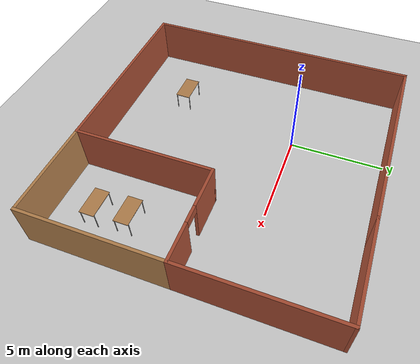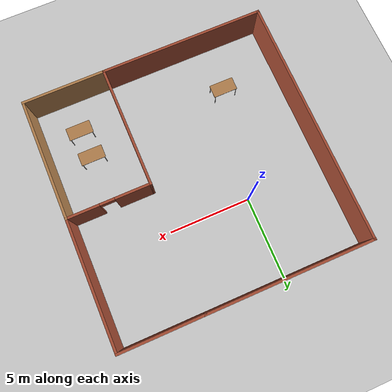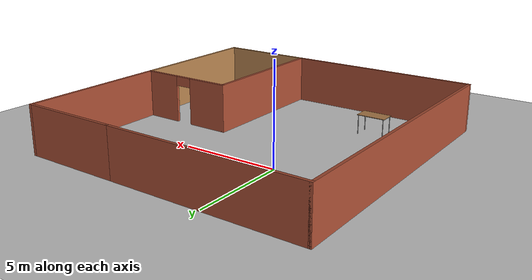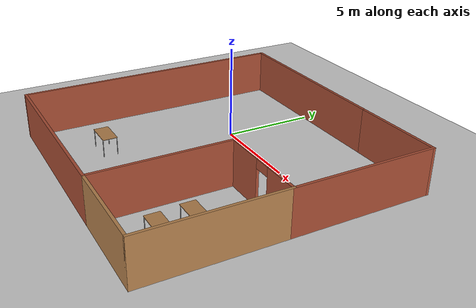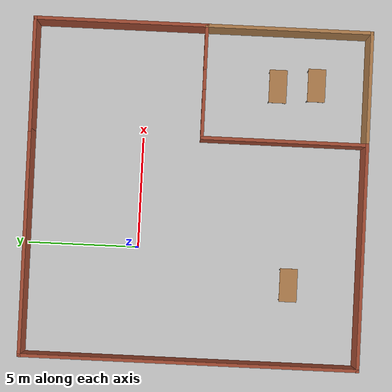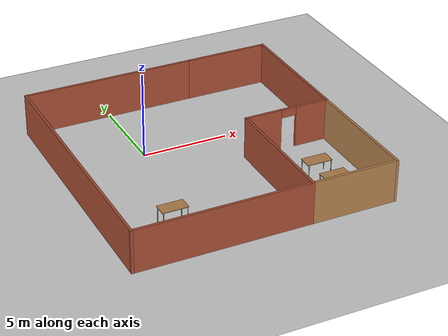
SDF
<sdf version="1.7">
 <world name="default">
  <light name="sun" type="directional">
   <pose>0 0 10 0 -0 0</pose>
   <diffuse>0.8 0.8 0.8 1</diffuse>
   <specular>0.2 0.2 0.2 1</specular>
   <attenuation>
    <range>1000</range>
    <constant>0.9</constant>
    <linear>0.01</linear>
    <quadratic>0.001</quadratic>
   </attenuation>
   <direction>-0.5 0.1 -0.9</direction>
   <spot><inner_angle>0</inner_angle><outer_angle>0</outer_angle><falloff>0</falloff></spot>
  </light>
  <model name="ground_plane">
   <static>1</static>
   <link name="link">
    <collision name="collision">
     <geometry><plane><normal>0 0 1</normal><size>100 100</size></plane></geometry>
     <surface>
      <contact><collide_bitmask>65535</collide_bitmask></contact>
      <friction><ode><mu>100</mu><mu2>50</mu2></ode></friction>
     </surface>
    </collision>
    <visual name="visual">
     <cast_shadows>0</cast_shadows>
     <geometry><plane><normal>0 0 1</normal><size>100 100</size></plane></geometry>
     <material>
      <script><uri>file://media/materials/scripts/gazebo.material</uri><name>Gazebo/Grey</name></script>
     </material>
    </visual>
   </link>
  </model>
  <gravity>0 0 -9.8</gravity>
  <magnetic_field>6e-06 2.3e-05 -4.2e-05</magnetic_field>
  <atmosphere type="adiabatic"/>
  <physics type="ode">
   <max_step_size>0.001</max_step_size>
   <real_time_factor>1</real_time_factor>
   <real_time_update_rate>1000</real_time_update_rate>
  </physics>
  <scene><ambient>0.4 0.4 0.4 1</ambient><background>0.7 0.7 0.7 1</background><shadows>1</shadows></scene>
  <spherical_coordinates>
   <surface_model>EARTH_WGS84</surface_model>
   <latitude_deg>0</latitude_deg>
   <longitude_deg>0</longitude_deg>
   <elevation>0</elevation>
   <heading_deg>0</heading_deg>
  </spherical_coordinates>
  <model name="wall">
   <pose>2.49997 -2.5 0 0 -0 0</pose>
   <link name="Wall_0">
    <collision name="Wall_0_Collision">
     <geometry><box><size>10.15 0.15 2.5</size></box></geometry>
     <pose>0 0 1.25 0 -0 0</pose>
    </collision>
    <visual name="Wall_0_Visual">
     <pose>0 0 1.25 0 -0 0</pose>
     <geometry><box><size>10.15 0.15 2.5</size></box></geometry>
     <material>
      <script><uri>file://media/materials/scripts/gazebo.material</uri><name>Gazebo/Bricks</name></script>
      <ambient>1 1 1 1</ambient>
     </material>
     <meta><layer>0</layer></meta>
    </visual>
    <pose>-2.49997 7.5 0 0 -0 0</pose>
   </link>
   <link name="Wall_10">
    <collision name="Wall_10_Collision">
     <geometry><box><size>5.15 0.15 2.5</size></box></geometry>
     <pose>0 0 1.25 0 -0 0</pose>
    </collision>
    <visual name="Wall_10_Visual">
     <pose>0 0 1.25 0 -0 0</pose>
     <geometry><box><size>5.15 0.15 2.5</size></box></geometry>
     <material>
      <script><uri>file://media/materials/scripts/gazebo.material</uri><name>Gazebo/Wood</name></script>
      <ambient>1 1 1 1</ambient>
     </material>
     <meta><layer>0</layer></meta>
    </visual>
    <pose>5.00003 -7.5 0 0 -0 0</pose>
   </link>
   <link name="Wall_11">
    <collision name="Wall_11_Collision">
     <geometry><box><size>7.5 0.15 2.5</size></box></geometry>
     <pose>0 0 1.25 0 -0 0</pose>
    </collision>
    <visual name="Wall_11_Visual">
     <pose>0 0 1.25 0 -0 0</pose>
     <geometry><box><size>7.5 0.15 2.5</size></box></geometry>
     <material>
      <script><uri>file://media/materials/scripts/gazebo.material</uri><name>Gazebo/Wood</name></script>
      <ambient>1 1 1 1</ambient>
     </material>
     <meta><layer>0</layer></meta>
    </visual>
    <pose>7.50003 -3.825 0 0 -0 1.5708</pose>
   </link>
   <link name="Wall_2">
    <collision name="Wall_2_Collision">
     <geometry><box><size>10.1501 0.15 2.5</size></box></geometry>
     <pose>0 0 1.25 0 -0 0</pose>
    </collision>
    <visual name="Wall_2_Visual">
     <pose>0 0 1.25 0 -0 0</pose>
     <geometry><box><size>10.1501 0.15 2.5</size></box></geometry>
     <material>
      <script><uri>file://media/materials/scripts/gazebo.material</uri><name>Gazebo/Bricks</name></script>
      <ambient>1 1 1 1</ambient>
     </material>
     <meta><layer>0</layer></meta>
    </visual>
    <pose>-2.49997 -7.5 0 0 -0 3.14159</pose>
   </link>
   <link name="Wall_3">
    <collision name="Wall_3_Collision">
     <geometry><box><size>15.15 0.15 2.5</size></box></geometry>
     <pose>0 0 1.25 0 -0 0</pose>
    </collision>
    <visual name="Wall_3_Visual">
     <pose>0 0 1.25 0 -0 0</pose>
     <geometry><box><size>15.15 0.15 2.5</size></box></geometry>
     <material>
      <script><uri>file://media/materials/scripts/gazebo.material</uri><name>Gazebo/Bricks</name></script>
      <ambient>1 1 1 1</ambient>
     </material>
     <meta><layer>0</layer></meta>
    </visual>
    <pose>-7.49997 0 0 0 -0 1.5708</pose>
   </link>
   <link name="Wall_5">
    <collision name="Wall_5_Collision">
     <geometry><box><size>7.5 0.15 2.5</size></box></geometry>
     <pose>0 0 1.25 0 -0 0</pose>
    </collision>
    <visual name="Wall_5_Visual">
     <pose>0 0 1.25 0 -0 0</pose>
     <geometry><box><size>7.5 0.15 2.5</size></box></geometry>
     <material>
      <script><uri>file://media/materials/scripts/gazebo.material</uri><name>Gazebo/Bricks</name></script>
      <ambient>1 1 1 1</ambient>
     </material>
     <meta><layer>0</layer></meta>
    </visual>
    <pose>2.50003 -3.825 0 0 -0 1.5708</pose>
   </link>
   <link name="Wall_6">
    <pose>5.00003 -0.15 0 0 -0 0</pose>
    <visual name="Wall_6_Visual_0">
     <pose>-1.46302 0 1.25 0 -0 0</pose>
     <geometry><box><size>2.22396 0.15 2.5</size></box></geometry>
     <material>
      <script><uri>file://media/materials/scripts/gazebo.material</uri><name>Gazebo/Bricks</name></script>
      <ambient>1 1 1 1</ambient>
     </material>
     <meta><layer>0</layer></meta>
    </visual>
    <collision name="Wall_6_Collision_0">
     <geometry><box><size>2.22396 0.15 2.5</size></box></geometry>
     <pose>-1.46302 0 1.25 0 -0 0</pose>
    </collision>
    <visual name="Wall_6_Visual_1">
     <pose>1.56198 0 1.25 0 -0 0</pose>
     <geometry><box><size>2.02604 0.15 2.5</size></box></geometry>
     <material>
      <script><uri>file://media/materials/scripts/gazebo.material</uri><name>Gazebo/Bricks</name></script>
      <ambient>1 1 1 1</ambient>
     </material>
     <meta><layer>0</layer></meta>
    </visual>
    <collision name="Wall_6_Collision_1">
     <geometry><box><size>2.02604 0.15 2.5</size></box></geometry>
     <pose>1.56198 0 1.25 0 -0 0</pose>
    </collision>
    <visual name="Wall_6_Visual_2">
     <pose>0.098958 0 2.25 0 -0 0</pose>
     <geometry><box><size>0.9 0.15 0.5</size></box></geometry>
     <material>
      <script><uri>file://media/materials/scripts/gazebo.material</uri><name>Gazebo/Bricks</name></script>
      <ambient>1 1 1 1</ambient>
     </material>
     <meta><layer>0</layer></meta>
    </visual>
    <collision name="Wall_6_Collision_2">
     <geometry><box><size>0.9 0.15 0.5</size></box></geometry>
     <pose>0.098958 0 2.25 0 -0 0</pose>
    </collision>
   </link>
   <link name="Wall_7">
    <collision name="Wall_7_Collision">
     <geometry><box><size>7.8 0.15 2.5</size></box></geometry>
     <pose>0 0 1.25 0 -0 0</pose>
    </collision>
    <visual name="Wall_7_Visual">
     <pose>0 0 1.25 0 -0 0</pose>
     <geometry><box><size>7.8 0.15 2.5</size></box></geometry>
     <material>
      <script><uri>file://media/materials/scripts/gazebo.material</uri><name>Gazebo/Bricks</name></script>
      <ambient>1 1 1 1</ambient>
     </material>
     <meta><layer>0</layer></meta>
    </visual>
    <pose>7.50003 3.675 0 0 -0 1.5708</pose>
   </link>
   <link name="Wall_8">
    <collision name="Wall_8_Collision">
     <geometry><box><size>5.15 0.15 2.5</size></box></geometry>
     <pose>0 0 1.25 0 -0 0</pose>
    </collision>
    <visual name="Wall_8_Visual">
     <pose>0 0 1.25 0 -0 0</pose>
     <geometry><box><size>5.15 0.15 2.5</size></box></geometry>
     <material>
      <script><uri>file://media/materials/scripts/gazebo.material</uri><name>Gazebo/Bricks</name></script>
      <ambient>1 1 1 1</ambient>
     </material>
     <meta><layer>0</layer></meta>
    </visual>
    <pose>5.00003 7.5 0 0 -0 3.14159</pose>
   </link>
   <static>1</static>
  </model>
  <model name="Table">
   <static>1</static>
   <link name="link">
    <collision name="surface">
     <pose>0 0 1 0 -0 0</pose>
     <geometry><box><size>1.5 0.8 0.03</size></box></geometry>
     <surface><friction><ode><mu>0.6</mu><mu2>0.6</mu2></ode></friction></surface>
    </collision>
    <visual name="visual1">
     <pose>0 0 1 0 -0 0</pose>
     <geometry><box><size>1.5 0.8 0.03</size></box></geometry>
     <material>
      <diffuse>1 1 1 1</diffuse>
      <script><uri>file://media/materials/scripts/gazebo.material</uri><name>Gazebo/Wood</name></script>
      <pbr>
       <metal>
        <albedo_map>https://fuel.ignitionrobotics.org/1.0/openrobotics/models/table/3/files/Table_Diffuse.jpg</albedo_map>
       </metal>
      </pbr>
     </material>
    </visual>
    <collision name="front_left_leg">
     <pose>0.68 0.38 0.5 0 -0 0</pose>
     <geometry><cylinder><radius>0.02</radius><length>1</length></cylinder></geometry>
    </collision>
    <visual name="front_left_leg">
     <pose>0.68 0.38 0.5 0 -0 0</pose>
     <geometry><cylinder><radius>0.02</radius><length>1</length></cylinder></geometry>
     <material>
      <diffuse>0.5 0.5 0.5 1</diffuse>
      <script><uri>file://media/materials/scripts/gazebo.material</uri><name>Gazebo/Grey</name></script>
     </material>
    </visual>
    <collision name="front_right_leg">
     <pose>0.68 -0.38 0.5 0 -0 0</pose>
     <geometry><cylinder><radius>0.02</radius><length>1</length></cylinder></geometry>
    </collision>
    <visual name="front_right_leg">
     <pose>0.68 -0.38 0.5 0 -0 0</pose>
     <geometry><cylinder><radius>0.02</radius><length>1</length></cylinder></geometry>
     <material>
      <diffuse>0.5 0.5 0.5 1</diffuse>
      <script><uri>file://media/materials/scripts/gazebo.material</uri><name>Gazebo/Grey</name></script>
     </material>
    </visual>
    <collision name="back_right_leg">
     <pose>-0.68 -0.38 0.5 0 -0 0</pose>
     <geometry><cylinder><radius>0.02</radius><length>1</length></cylinder></geometry>
    </collision>
    <visual name="back_right_leg">
     <pose>-0.68 -0.38 0.5 0 -0 0</pose>
     <geometry><cylinder><radius>0.02</radius><length>1</length></cylinder></geometry>
     <material>
      <diffuse>0.5 0.5 0.5 1</diffuse>
      <script><uri>file://media/materials/scripts/gazebo.material</uri><name>Gazebo/Grey</name></script>
     </material>
    </visual>
    <collision name="back_left_leg">
     <pose>-0.68 0.38 0.5 0 -0 0</pose>
     <geometry><cylinder><radius>0.02</radius><length>1</length></cylinder></geometry>
    </collision>
    <visual name="back_left_leg">
     <pose>-0.68 0.38 0.5 0 -0 0</pose>
     <geometry><cylinder><radius>0.02</radius><length>1</length></cylinder></geometry>
     <material>
      <diffuse>0.5 0.5 0.5 1</diffuse>
      <script><uri>file://media/materials/scripts/gazebo.material</uri><name>Gazebo/Grey</name></script>
     </material>
    </visual>
   </link>
   <pose>7.68416 -7.72678 0 0 -0 0</pose>
  </model>
  <model name="Table_clone">
   <static>1</static>
   <link name="link">
    <collision name="surface">
     <pose>0 0 1 0 -0 0</pose>
     <geometry><box><size>1.5 0.8 0.03</size></box></geometry>
     <surface><friction><ode><mu>0.6</mu><mu2>0.6</mu2></ode></friction></surface>
    </collision>
    <visual name="visual1">
     <pose>0 0 1 0 -0 0</pose>
     <geometry><box><size>1.5 0.8 0.03</size></box></geometry>
     <material>
      <diffuse>1 1 1 1</diffuse>
      <script><uri>file://media/materials/scripts/gazebo.material</uri><name>Gazebo/Wood</name></script>
      <pbr>
       <metal>
        <albedo_map>https://fuel.ignitionrobotics.org/1.0/openrobotics/models/table/3/files/Table_Diffuse.jpg</albedo_map>
       </metal>
      </pbr>
     </material>
    </visual>
    <collision name="front_left_leg">
     <pose>0.68 0.38 0.5 0 -0 0</pose>
     <geometry><cylinder><radius>0.02</radius><length>1</length></cylinder></geometry>
    </collision>
    <visual name="front_left_leg">
     <pose>0.68 0.38 0.5 0 -0 0</pose>
     <geometry><cylinder><radius>0.02</radius><length>1</length></cylinder></geometry>
     <material>
      <diffuse>0.5 0.5 0.5 1</diffuse>
      <script><uri>file://media/materials/scripts/gazebo.material</uri><name>Gazebo/Grey</name></script>
     </material>
    </visual>
    <collision name="front_right_leg">
     <pose>0.68 -0.38 0.5 0 -0 0</pose>
     <geometry><cylinder><radius>0.02</radius><length>1</length></cylinder></geometry>
    </collision>
    <visual name="front_right_leg">
     <pose>0.68 -0.38 0.5 0 -0 0</pose>
     <geometry><cylinder><radius>0.02</radius><length>1</length></cylinder></geometry>
     <material>
      <diffuse>0.5 0.5 0.5 1</diffuse>
      <script><uri>file://media/materials/scripts/gazebo.material</uri><name>Gazebo/Grey</name></script>
     </material>
    </visual>
    <collision name="back_right_leg">
     <pose>-0.68 -0.38 0.5 0 -0 0</pose>
     <geometry><cylinder><radius>0.02</radius><length>1</length></cylinder></geometry>
    </collision>
    <visual name="back_right_leg">
     <pose>-0.68 -0.38 0.5 0 -0 0</pose>
     <geometry><cylinder><radius>0.02</radius><length>1</length></cylinder></geometry>
     <material>
      <diffuse>0.5 0.5 0.5 1</diffuse>
      <script><uri>file://media/materials/scripts/gazebo.material</uri><name>Gazebo/Grey</name></script>
     </material>
    </visual>
    <collision name="back_left_leg">
     <pose>-0.68 0.38 0.5 0 -0 0</pose>
     <geometry><cylinder><radius>0.02</radius><length>1</length></cylinder></geometry>
    </collision>
    <visual name="back_left_leg">
     <pose>-0.68 0.38 0.5 0 -0 0</pose>
     <geometry><cylinder><radius>0.02</radius><length>1</length></cylinder></geometry>
     <material>
      <diffuse>0.5 0.5 0.5 1</diffuse>
      <script><uri>file://media/materials/scripts/gazebo.material</uri><name>Gazebo/Grey</name></script>
     </material>
    </visual>
   </link>
   <pose>7.56316 -5.984 0 0 -0 0</pose>
  </model>
  <model name="Table_clone_0">
   <static>1</static>
   <link name="link">
    <collision name="surface">
     <pose>0 0 1 0 -0 0</pose>
     <geometry><box><size>1.5 0.8 0.03</size></box></geometry>
     <surface><friction><ode><mu>0.6</mu><mu2>0.6</mu2></ode></friction></surface>
    </collision>
    <visual name="visual1">
     <pose>0 0 1 0 -0 0</pose>
     <geometry><box><size>1.5 0.8 0.03</size></box></geometry>
     <material>
      <diffuse>1 1 1 1</diffuse>
      <script><uri>file://media/materials/scripts/gazebo.material</uri><name>Gazebo/Wood</name></script>
      <pbr>
       <metal>
        <albedo_map>https://fuel.ignitionrobotics.org/1.0/openrobotics/models/table/3/files/Table_Diffuse.jpg</albedo_map>
       </metal>
      </pbr>
     </material>
    </visual>
    <collision name="front_left_leg">
     <pose>0.68 0.38 0.5 0 -0 0</pose>
     <geometry><cylinder><radius>0.02</radius><length>1</length></cylinder></geometry>
    </collision>
    <visual name="front_left_leg">
     <pose>0.68 0.38 0.5 0 -0 0</pose>
     <geometry><cylinder><radius>0.02</radius><length>1</length></cylinder></geometry>
     <material>
      <diffuse>0.5 0.5 0.5 1</diffuse>
      <script><uri>file://media/materials/scripts/gazebo.material</uri><name>Gazebo/Grey</name></script>
     </material>
    </visual>
    <collision name="front_right_leg">
     <pose>0.68 -0.38 0.5 0 -0 0</pose>
     <geometry><cylinder><radius>0.02</radius><length>1</length></cylinder></geometry>
    </collision>
    <visual name="front_right_leg">
     <pose>0.68 -0.38 0.5 0 -0 0</pose>
     <geometry><cylinder><radius>0.02</radius><length>1</length></cylinder></geometry>
     <material>
      <diffuse>0.5 0.5 0.5 1</diffuse>
      <script><uri>file://media/materials/scripts/gazebo.material</uri><name>Gazebo/Grey</name></script>
     </material>
    </visual>
    <collision name="back_right_leg">
     <pose>-0.68 -0.38 0.5 0 -0 0</pose>
     <geometry><cylinder><radius>0.02</radius><length>1</length></cylinder></geometry>
    </collision>
    <visual name="back_right_leg">
     <pose>-0.68 -0.38 0.5 0 -0 0</pose>
     <geometry><cylinder><radius>0.02</radius><length>1</length></cylinder></geometry>
     <material>
      <diffuse>0.5 0.5 0.5 1</diffuse>
      <script><uri>file://media/materials/scripts/gazebo.material</uri><name>Gazebo/Grey</name></script>
     </material>
    </visual>
    <collision name="back_left_leg">
     <pose>-0.68 0.38 0.5 0 -0 0</pose>
     <geometry><cylinder><radius>0.02</radius><length>1</length></cylinder></geometry>
    </collision>
    <visual name="back_left_leg">
     <pose>-0.68 0.38 0.5 0 -0 0</pose>
     <geometry><cylinder><radius>0.02</radius><length>1</length></cylinder></geometry>
     <material>
      <diffuse>0.5 0.5 0.5 1</diffuse>
      <script><uri>file://media/materials/scripts/gazebo.material</uri><name>Gazebo/Grey</name></script>
     </material>
    </visual>
   </link>
   <pose>-1.38667 -6.85459 0 0 -0 0</pose>
  </model>
 </world>
</sdf>
